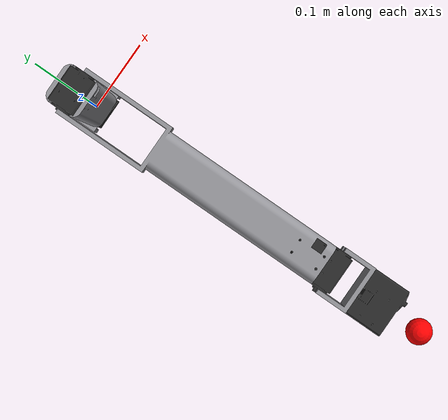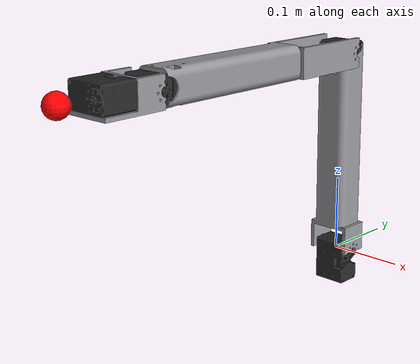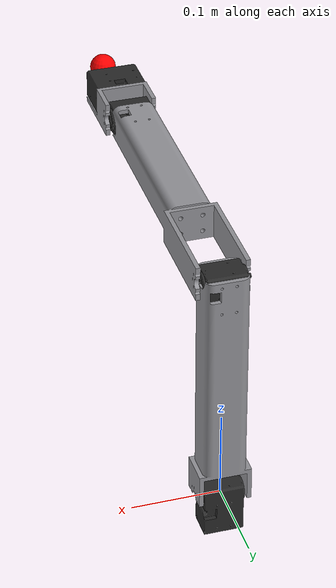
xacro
<?xml version="1.0"?>
<!-- Standalone robot used by the MoveIt demo, with mock ros2_control hardware. -->
<robot name="rav_manipulator" xmlns:xacro="http://www.ros.org/wiki/xacro">
  <xacro:arg name="use_fake_hardware" default="true"/>
  <xacro:include filename="$(find rav_description)/urdf/rav_manipulator.urdf.xacro"/>

  <link name="manipulator_world"/>
  <xacro:rav_manipulator
      parent_link="manipulator_world"
      mount_xyz="0 0 0"
      mount_rpy="0 0 0"
      use_fake_hardware="false"/>

  <!-- Plugin RAV em modo seguro: não abre serial nem movimenta motores. -->
  <ros2_control name="RavManipuladorDynamixelRealUnmounted" type="system">
    <hardware>
      <plugin>rav_dynamixel_hardware/RavDynamixelHardware</plugin>
      <param name="dry_run">false</param>
      <param name="enable_motors">true</param>
      <param name="device">/dev/serial/by-id/usb-CM-900_ROBOTIS_Virtual_COM_Port-if00</param>
      <param name="baud">1000000</param>
      <param name="profile_velocity">35</param>
      <param name="profile_acceleration">12</param>
    </hardware>

    <joint name="shoulder_joint">
      <param name="id">1</param>
      <param name="direction">1</param>
      <param name="zero_tick">2048</param>
      <param name="min_tick">1024</param>
      <param name="max_tick">3072</param>
      <command_interface name="position"/>
      <state_interface name="position"/>
      <state_interface name="velocity"/>
    </joint>

    <joint name="elbow_joint">
      <param name="id">2</param>
      <param name="direction">1</param>
      <param name="zero_tick">2048</param>
      <param name="min_tick">1024</param>
      <param name="max_tick">3072</param>
      <command_interface name="position"/>
      <state_interface name="position"/>
      <state_interface name="velocity"/>
    </joint>

    <joint name="wrist_joint">
      <param name="id">3</param>
      <param name="direction">1</param>
      <param name="zero_tick">2048</param>
      <param name="min_tick">1024</param>
      <param name="max_tick">3072</param>
      <command_interface name="position"/>
      <state_interface name="position"/>
      <state_interface name="velocity"/>
    </joint>
  </ros2_control>

</robot>

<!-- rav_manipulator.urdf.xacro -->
<robot name="rav_manipulator" xmlns:xacro="http://www.ros.org/wiki/xacro">

  <!--
    Propriedades físicas provisórias para Gazebo.
    Não interferem no controle dos Dynamixel reais.
    Substituir futuramente por massas e tensores medidos/calculados.
  -->
  <xacro:macro
      name="rav_provisional_inertial"
      params="mass xyz ixx iyy izz">
    <inertial>
      <origin xyz="${xyz}" rpy="0 0 0"/>
      <mass value="${mass}"/>
      <inertia
          ixx="${ixx}" ixy="0.0" ixz="0.0"
          iyy="${iyy}" iyz="0.0"
          izz="${izz}"/>
    </inertial>
  </xacro:macro>

  <xacro:macro name="rav_manipulator"
               params="parent_link mount_xyz:='0 0 0' mount_rpy:='0 0 0' use_fake_hardware:=false">

    <xacro:property name="j1_to_j2_y" value="0.000029639983"/>
    <xacro:property name="j1_to_j2_z" value="0.278118072919"/>
    <xacro:property name="j2_to_j3_y" value="-0.343030187591"/>
    <xacro:property name="j2_to_j3_z" value="-0.000015558969"/>

    <!-- Limites provisórios: somente para RViz/MoveIt sem hardware real. -->
    <xacro:property name="joint_lower_limit" value="${-pi / 2.0}"/>
    <xacro:property name="joint_upper_limit" value="${ pi / 2.0}"/>
    <xacro:property name="joint_effort_limit" value="10.0"/>
    <xacro:property name="joint_velocity_limit" value="0.50"/>

    <material name="rav_manipulator_motor">
      <color rgba="0.16 0.16 0.16 1.0"/>
    </material>
    <material name="rav_manipulator_structure">
      <color rgba="0.58 0.58 0.60 1.0"/>
    </material>

    <joint name="rav_manipulator_mount_joint" type="fixed">
      <parent link="${parent_link}"/>
      <child link="manipulator_base_link"/>
      <origin xyz="${mount_xyz}" rpy="${mount_rpy}"/>
    </joint>

    <!--
      Dynamixel 1: a carcaça é fixada diretamente à estrutura interna do RAV.
      O origin abaixo leva o centro do horn do STL para a origem do link.
    -->
    <link name="manipulator_base_link">
      <xacro:rav_provisional_inertial
          mass="1.0"
          xyz="0 0 0"
          ixx="0.004" iyy="0.004" izz="0.004"/>
      <visual>
        <origin xyz="0 0.047471563258 -0.733684638388" rpy="0 0 0"/>
        <geometry>
          <mesh filename="package://rav_description/meshes/manipulator/dynamixel_xm540.stl"
                scale="0.001 0.001 0.001"/>
        </geometry>
        <material name="rav_manipulator_motor"/>
      </visual>
      <collision>
        <origin xyz="0 0.047471563258 -0.733684638388" rpy="0 0 0"/>
        <geometry>
          <mesh filename="package://rav_description/meshes/manipulator/dynamixel_xm540.stl"
                scale="0.001 0.001 0.001"/>
        </geometry>
      </collision>
    </link>

    <!-- J1: o horn do Dynamixel 1 movimenta U aço 1 + Link 1. -->
    <joint name="shoulder_joint" type="revolute">
      <parent link="manipulator_base_link"/>
      <child link="shoulder_link"/>
      <origin xyz="0 0 0" rpy="0 0 0"/>
      <axis xyz="1 0 0"/>
      <limit lower="${joint_lower_limit}" upper="${joint_upper_limit}"
             effort="${joint_effort_limit}" velocity="${joint_velocity_limit}"/>
    </joint>

    <!--
      Conjunto rígido do primeiro elo:
      U aço 1 + Link 1 + carcaça fixa do Dynamixel 2.
    -->
    <link name="shoulder_link">
      <xacro:rav_provisional_inertial
          mass="1.5"
          xyz="0 0.000015 0.139059"
          ixx="0.010" iyy="0.010" izz="0.002"/>
      <visual>
        <origin xyz="0 0.047471563258 -0.733684638388" rpy="0 0 0"/>
        <geometry>
          <mesh filename="package://rav_description/meshes/manipulator/link_1_assembly.stl"
                scale="0.001 0.001 0.001"/>
        </geometry>
        <material name="rav_manipulator_structure"/>
      </visual>
      <collision>
        <origin xyz="0 0.047471563258 -0.733684638388" rpy="0 0 0"/>
        <geometry>
          <mesh filename="package://rav_description/meshes/manipulator/link_1_assembly.stl"
                scale="0.001 0.001 0.001"/>
        </geometry>
      </collision>

      <!-- Corpo do Dynamixel 2, fixo no Link 1. -->
      <visual>
        <origin xyz="0 0.047501203241 -0.455566565469" rpy="0 0 0"/>
        <geometry>
          <mesh filename="package://rav_description/meshes/manipulator/dynamixel_xm540.stl"
                scale="0.001 0.001 0.001"/>
        </geometry>
        <material name="rav_manipulator_motor"/>
      </visual>
      <collision>
        <origin xyz="0 0.047501203241 -0.455566565469" rpy="0 0 0"/>
        <geometry>
          <mesh filename="package://rav_description/meshes/manipulator/dynamixel_xm540.stl"
                scale="0.001 0.001 0.001"/>
        </geometry>
      </collision>
    </link>

    <!-- J2: o horn do Dynamixel 2 movimenta U aço 2 + Link 2. -->
    <joint name="elbow_joint" type="revolute">
      <parent link="shoulder_link"/>
      <child link="elbow_link"/>
      <origin xyz="0 ${j1_to_j2_y} ${j1_to_j2_z}" rpy="0 0 0"/>
      <axis xyz="1 0 0"/>
      <limit lower="${joint_lower_limit}" upper="${joint_upper_limit}"
             effort="${joint_effort_limit}" velocity="${joint_velocity_limit}"/>
    </joint>

    <!--
      Conjunto rígido do segundo elo:
      U aço 2 + Link 2 + carcaça fixa do Dynamixel 3.
    -->
    <link name="elbow_link">
      <xacro:rav_provisional_inertial
          mass="1.2"
          xyz="0 -0.171515 0"
          ixx="0.012" iyy="0.002" izz="0.012"/>
      <visual>
        <origin xyz="0 0.047441923275 -1.011802711307" rpy="0 0 0"/>
        <geometry>
          <mesh filename="package://rav_description/meshes/manipulator/link_2_assembly.stl"
                scale="0.001 0.001 0.001"/>
        </geometry>
        <material name="rav_manipulator_structure"/>
      </visual>
      <collision>
        <origin xyz="0 0.047441923275 -1.011802711307" rpy="0 0 0"/>
        <geometry>
          <mesh filename="package://rav_description/meshes/manipulator/link_2_assembly.stl"
                scale="0.001 0.001 0.001"/>
        </geometry>
      </collision>

      <visual>
        <origin xyz="0 0.390654450797 0.047456004289" rpy="1.57079632679 0 0"/>
        <geometry>
          <mesh filename="package://rav_description/meshes/manipulator/dynamixel_xm540.stl"
                scale="0.001 0.001 0.001"/>
        </geometry>
        <material name="rav_manipulator_motor"/>
      </visual>
      <collision>
        <origin xyz="0 0.390654450797 0.047456004289" rpy="1.57079632679 0 0"/>
        <geometry>
          <mesh filename="package://rav_description/meshes/manipulator/dynamixel_xm540.stl"
                scale="0.001 0.001 0.001"/>
        </geometry>
      </collision>
    </link>

    <!-- J3: o horn do Dynamixel 3 movimenta U aço 3 e a futura garra. -->
    <joint name="wrist_joint" type="revolute">
      <parent link="elbow_link"/>
      <child link="wrist_link"/>
      <origin xyz="0 ${j2_to_j3_y} ${j2_to_j3_z}" rpy="0 0 0"/>
      <axis xyz="1 0 0"/>
      <limit lower="${joint_lower_limit}" upper="${joint_upper_limit}"
             effort="${joint_effort_limit}" velocity="${joint_velocity_limit}"/>
    </joint>

    <!-- U aço 3, onde o Dynamixel 4 será fixado quando a garra entrar. -->
    <link name="wrist_link">
      <xacro:rav_provisional_inertial
          mass="0.8"
          xyz="0 0 0"
          ixx="0.004" iyy="0.004" izz="0.004"/>
      <visual>
        <origin xyz="0 0.390472110866 -1.011787152338" rpy="0 0 0"/>
        <geometry>
          <mesh filename="package://rav_description/meshes/manipulator/wrist_assembly.stl"
                scale="0.001 0.001 0.001"/>
        </geometry>
        <material name="rav_manipulator_structure"/>
      </visual>
      <collision>
        <origin xyz="0 0.390472110866 -1.011787152338" rpy="0 0 0"/>
        <geometry>
          <mesh filename="package://rav_description/meshes/manipulator/wrist_assembly.stl"
                scale="0.001 0.001 0.001"/>
        </geometry>
      </collision>

      <visual>
        <origin xyz="-0.718 -0.0619 0.0499"
                rpy="1.57079632679 0 1.57079632679"/>
        <geometry>
          <mesh filename="package://rav_description/meshes/manipulator/dynamixel_xm540.stl"
                scale="0.001 0.001 0.001"/>
        </geometry>
        <material name="rav_manipulator_motor"/>
      </visual>
      <collision>
        <origin xyz="-0.718 -0.0619 0.0499"
                rpy="1.57079632679 0 1.57079632679"/>
        <geometry>
          <mesh filename="package://rav_description/meshes/manipulator/dynamixel_xm540.stl"
                scale="0.001 0.001 0.001"/>
        </geometry>
      </collision>
    </link>

    <!--
      Ponto terminal provisório do terceiro elo.
      Não representa uma garra; representa a ponta física usada nos testes
      de alcance do manipulador sem gripper.
    -->
    <link name="wrist_tip">
      <visual>
        <geometry>
          <sphere radius="0.015"/>
        </geometry>
        <material name="wrist_tip_material">
          <color rgba="1.0 0.0 0.0 1.0"/>
        </material>
      </visual>
    </link>

    <joint name="wrist_tip_joint" type="fixed">
      <parent link="wrist_link"/>
      <child link="wrist_tip"/>
      <origin xyz="0 -0.120 0" rpy="0 0 0"/>
    </joint>

    <!-- Frame neutro para a futura garra. A posição final ainda não foi presumida. -->
    <link name="gripper_mount"/>
    <joint name="gripper_mount_joint" type="fixed">
      <parent link="wrist_link"/>
      <child link="gripper_mount"/>
      <origin xyz="0 0 0" rpy="0 0 0"/>
    </joint>

    <!-- Simulação somente para o demo do MoveIt, sem OpenCM/Dynamixel físico. -->
    <xacro:if value="${use_fake_hardware}">
      <ros2_control name="RavManipulatorFakeSystem" type="system">
        <hardware>
          <plugin>mock_components/GenericSystem</plugin>
        </hardware>
        <joint name="shoulder_joint">
          <command_interface name="position"/>
          <state_interface name="position"/>
          <state_interface name="velocity"/>
        </joint>
        <joint name="elbow_joint">
          <command_interface name="position"/>
          <state_interface name="position"/>
          <state_interface name="velocity"/>
        </joint>
        <joint name="wrist_joint">
          <command_interface name="position"/>
          <state_interface name="position"/>
          <state_interface name="velocity"/>
        </joint>
      </ros2_control>
    </xacro:if>

  </xacro:macro>
</robot>
